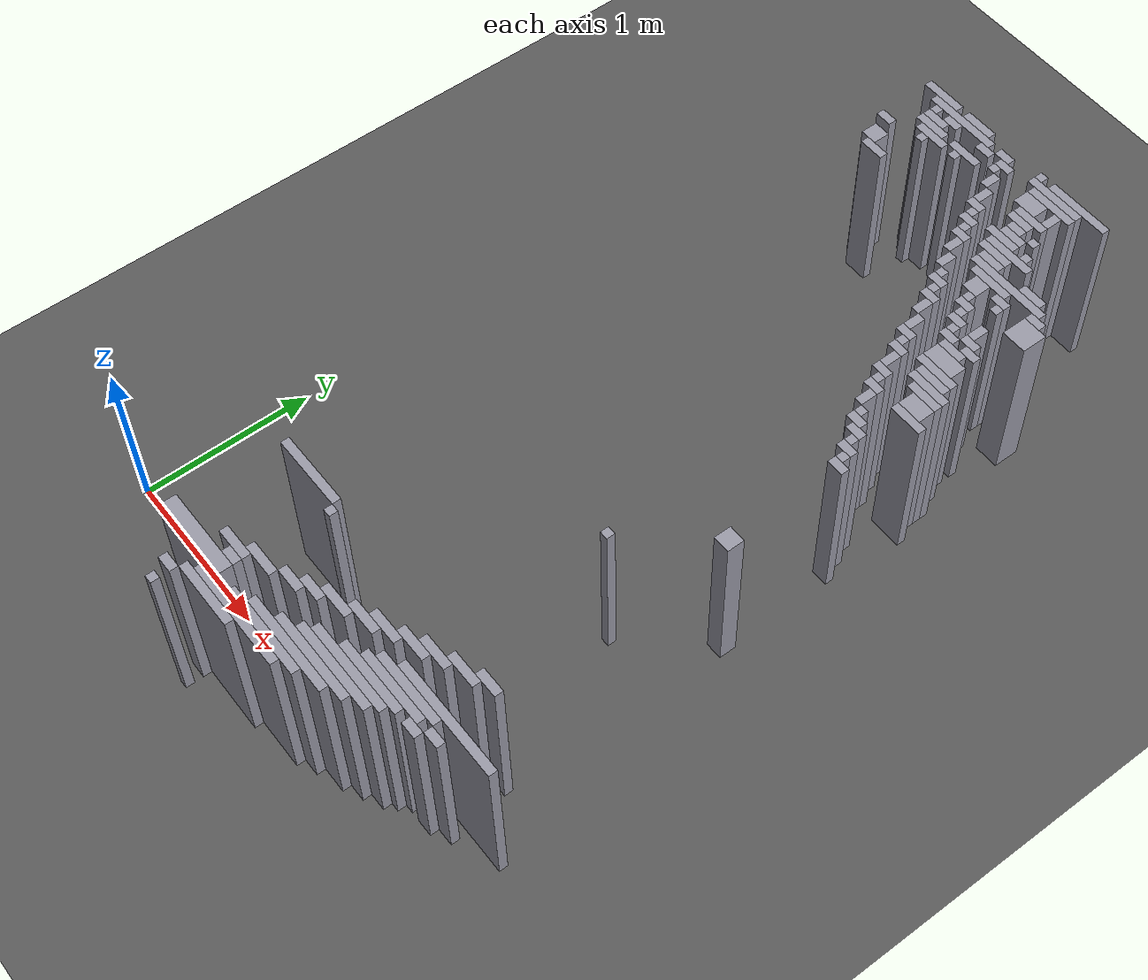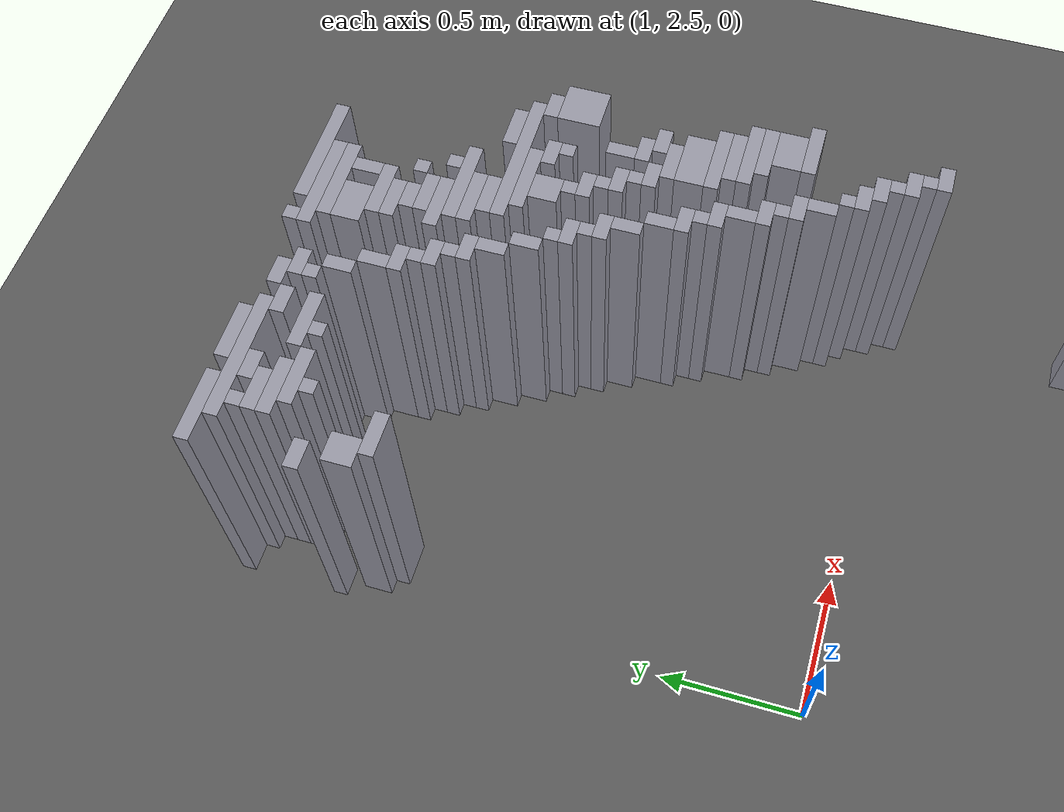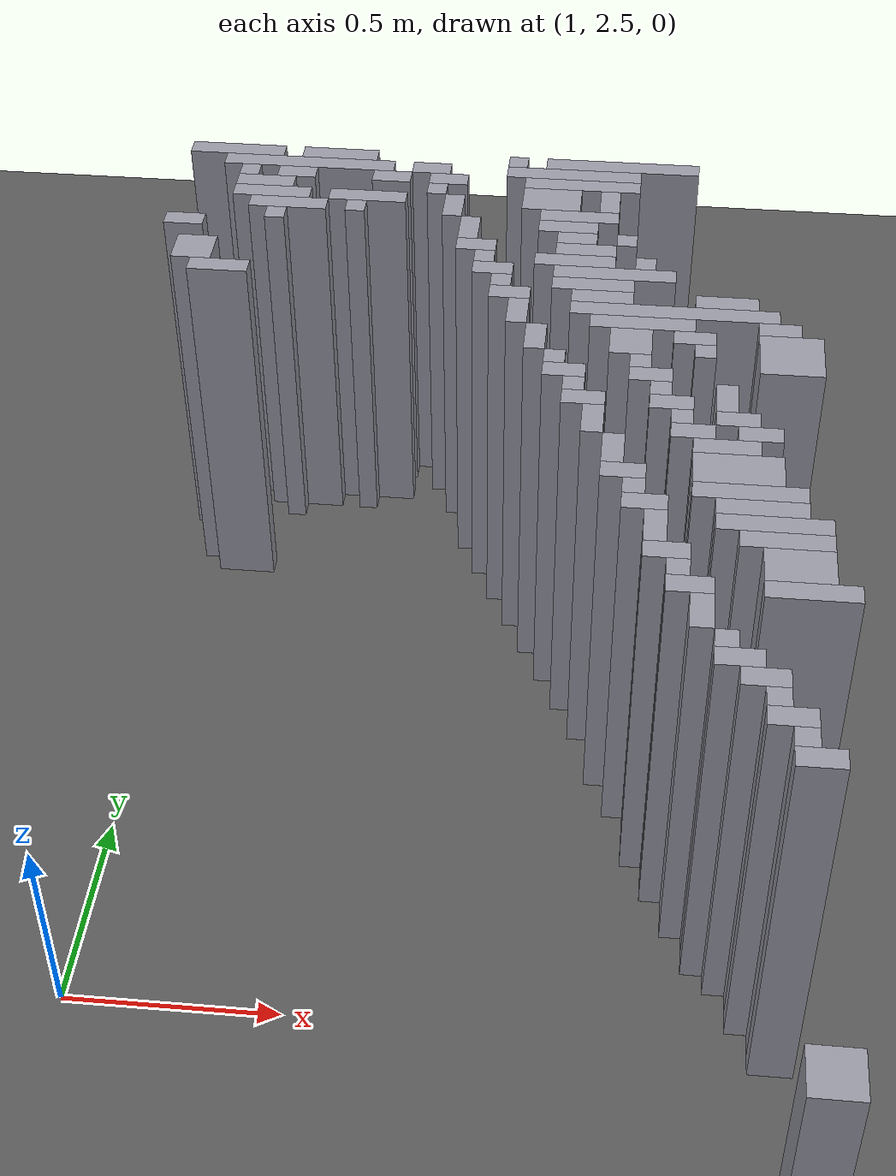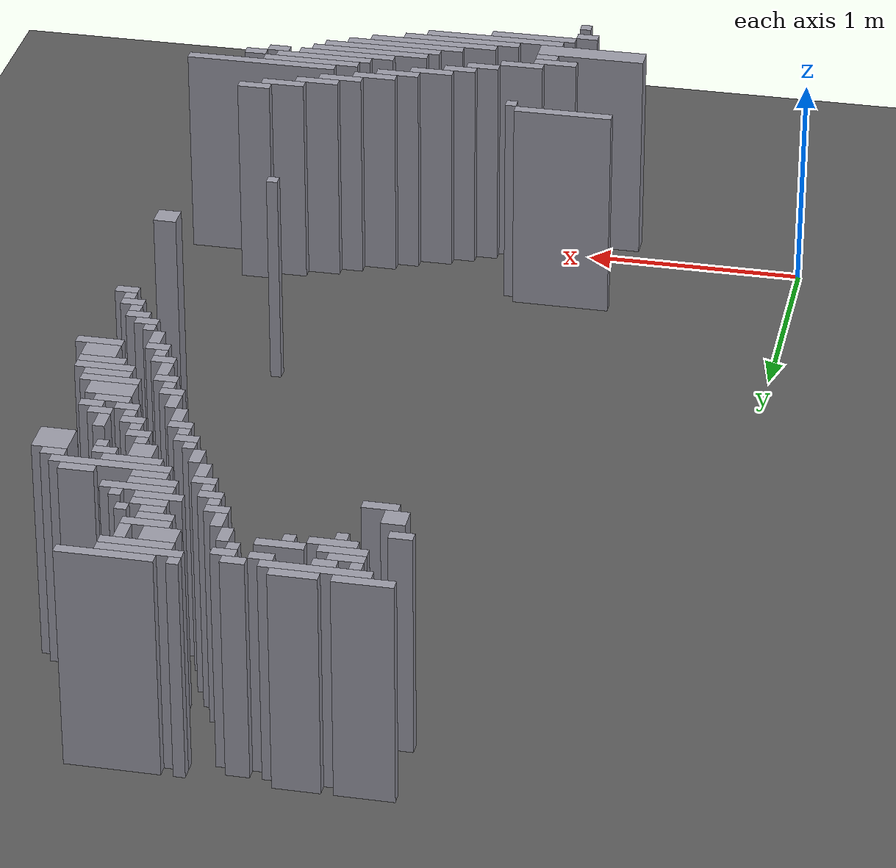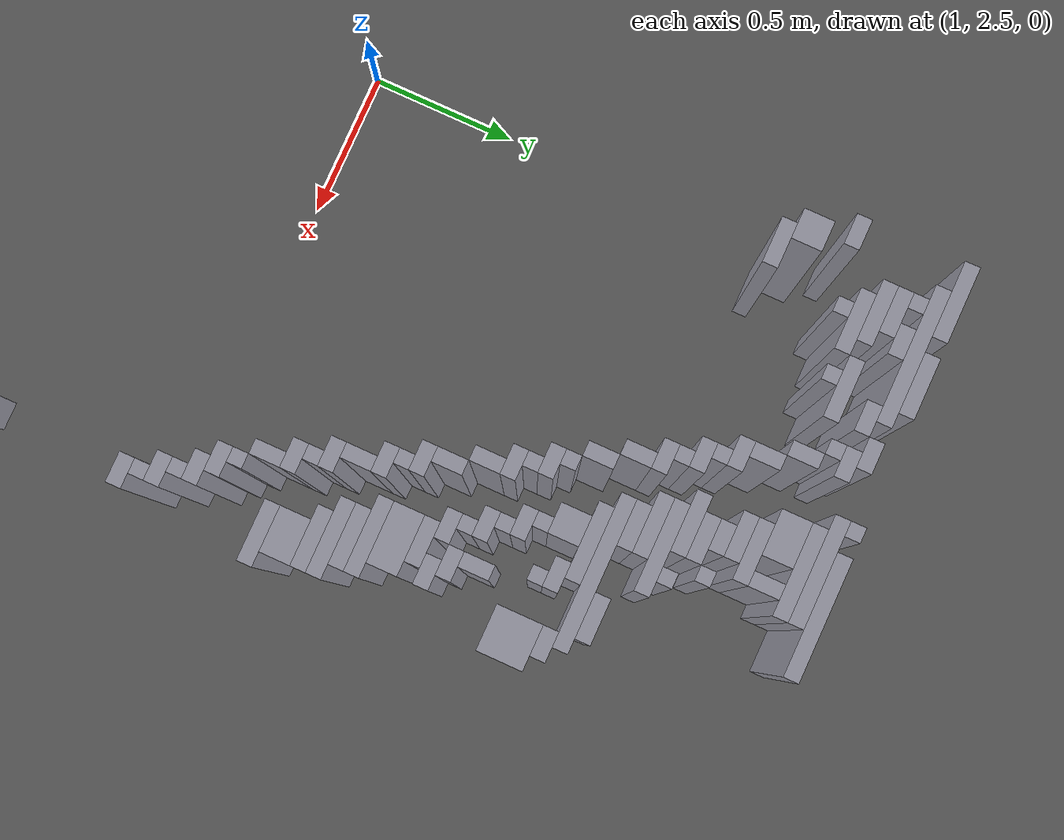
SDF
<sdf version="1.8">
 <world name="dimi">
  <model name="ground">
   <static>true</static>
   <link name="ground_link">
    <collision name="c"><geometry><plane><normal>0 0 1</normal><size>60 60</size></plane></geometry></collision>
    <visual name="v">
     <geometry><plane><normal>0 0 1</normal><size>60 60</size></plane></geometry>
     <material><ambient>0.3 0.3 0.3 1</ambient><diffuse>0.35 0.35 0.35 1</diffuse></material>
    </visual>
   </link>
  </model>
  <model name="walls">
   <static>true</static>
   <link name="wall_730">
    <pose>1.1080 4.5200 0.5000 0 0 0</pose>
    <collision name="c"><geometry><box><size>0.2500 0.0500 1.0000</size></box></geometry></collision>
    <visual name="v">
     <geometry><box><size>0.2500 0.0500 1.0000</size></box></geometry>
     <material><ambient>0.5 0.5 0.55 1</ambient><diffuse>0.6 0.6 0.65 1</diffuse></material>
    </visual>
   </link>
   <link name="wall_731">
    <pose>1.3830 4.5200 0.5000 0 0 0</pose>
    <collision name="c"><geometry><box><size>0.2000 0.0500 1.0000</size></box></geometry></collision>
    <visual name="v">
     <geometry><box><size>0.2000 0.0500 1.0000</size></box></geometry>
     <material><ambient>0.5 0.5 0.55 1</ambient><diffuse>0.6 0.6 0.65 1</diffuse></material>
    </visual>
   </link>
   <link name="wall_732">
    <pose>1.8580 4.5200 0.5000 0 0 0</pose>
    <collision name="c"><geometry><box><size>0.0500 0.0500 1.0000</size></box></geometry></collision>
    <visual name="v">
     <geometry><box><size>0.0500 0.0500 1.0000</size></box></geometry>
     <material><ambient>0.5 0.5 0.55 1</ambient><diffuse>0.6 0.6 0.65 1</diffuse></material>
    </visual>
   </link>
   <link name="wall_733">
    <pose>2.1330 4.5200 0.5000 0 0 0</pose>
    <collision name="c"><geometry><box><size>0.4000 0.0500 1.0000</size></box></geometry></collision>
    <visual name="v">
     <geometry><box><size>0.4000 0.0500 1.0000</size></box></geometry>
     <material><ambient>0.5 0.5 0.55 1</ambient><diffuse>0.6 0.6 0.65 1</diffuse></material>
    </visual>
   </link>
   <link name="wall_741">
    <pose>1.3080 4.4700 0.5000 0 0 0</pose>
    <collision name="c"><geometry><box><size>0.4500 0.0500 1.0000</size></box></geometry></collision>
    <visual name="v">
     <geometry><box><size>0.4500 0.0500 1.0000</size></box></geometry>
     <material><ambient>0.5 0.5 0.55 1</ambient><diffuse>0.6 0.6 0.65 1</diffuse></material>
    </visual>
   </link>
   <link name="wall_742">
    <pose>1.6330 4.4700 0.5000 0 0 0</pose>
    <collision name="c"><geometry><box><size>0.1000 0.0500 1.0000</size></box></geometry></collision>
    <visual name="v">
     <geometry><box><size>0.1000 0.0500 1.0000</size></box></geometry>
     <material><ambient>0.5 0.5 0.55 1</ambient><diffuse>0.6 0.6 0.65 1</diffuse></material>
    </visual>
   </link>
   <link name="wall_743">
    <pose>2.0080 4.4700 0.5000 0 0 0</pose>
    <collision name="c"><geometry><box><size>0.3500 0.0500 1.0000</size></box></geometry></collision>
    <visual name="v">
     <geometry><box><size>0.3500 0.0500 1.0000</size></box></geometry>
     <material><ambient>0.5 0.5 0.55 1</ambient><diffuse>0.6 0.6 0.65 1</diffuse></material>
    </visual>
   </link>
   <link name="wall_748">
    <pose>1.1580 4.4200 0.5000 0 0 0</pose>
    <collision name="c"><geometry><box><size>0.0500 0.0500 1.0000</size></box></geometry></collision>
    <visual name="v">
     <geometry><box><size>0.0500 0.0500 1.0000</size></box></geometry>
     <material><ambient>0.5 0.5 0.55 1</ambient><diffuse>0.6 0.6 0.65 1</diffuse></material>
    </visual>
   </link>
   <link name="wall_749">
    <pose>1.2830 4.4200 0.5000 0 0 0</pose>
    <collision name="c"><geometry><box><size>0.1000 0.0500 1.0000</size></box></geometry></collision>
    <visual name="v">
     <geometry><box><size>0.1000 0.0500 1.0000</size></box></geometry>
     <material><ambient>0.5 0.5 0.55 1</ambient><diffuse>0.6 0.6 0.65 1</diffuse></material>
    </visual>
   </link>
   <link name="wall_750">
    <pose>1.5330 4.4200 0.5000 0 0 0</pose>
    <collision name="c"><geometry><box><size>0.1000 0.0500 1.0000</size></box></geometry></collision>
    <visual name="v">
     <geometry><box><size>0.1000 0.0500 1.0000</size></box></geometry>
     <material><ambient>0.5 0.5 0.55 1</ambient><diffuse>0.6 0.6 0.65 1</diffuse></material>
    </visual>
   </link>
   <link name="wall_751">
    <pose>1.6830 4.4200 0.5000 0 0 0</pose>
    <collision name="c"><geometry><box><size>0.1000 0.0500 1.0000</size></box></geometry></collision>
    <visual name="v">
     <geometry><box><size>0.1000 0.0500 1.0000</size></box></geometry>
     <material><ambient>0.5 0.5 0.55 1</ambient><diffuse>0.6 0.6 0.65 1</diffuse></material>
    </visual>
   </link>
   <link name="wall_752">
    <pose>2.0330 4.4200 0.5000 0 0 0</pose>
    <collision name="c"><geometry><box><size>0.3000 0.0500 1.0000</size></box></geometry></collision>
    <visual name="v">
     <geometry><box><size>0.3000 0.0500 1.0000</size></box></geometry>
     <material><ambient>0.5 0.5 0.55 1</ambient><diffuse>0.6 0.6 0.65 1</diffuse></material>
    </visual>
   </link>
   <link name="wall_761">
    <pose>1.2080 4.3700 0.5000 0 0 0</pose>
    <collision name="c"><geometry><box><size>0.1500 0.0500 1.0000</size></box></geometry></collision>
    <visual name="v">
     <geometry><box><size>0.1500 0.0500 1.0000</size></box></geometry>
     <material><ambient>0.5 0.5 0.55 1</ambient><diffuse>0.6 0.6 0.65 1</diffuse></material>
    </visual>
   </link>
   <link name="wall_762">
    <pose>1.6580 4.3700 0.5000 0 0 0</pose>
    <collision name="c"><geometry><box><size>0.0500 0.0500 1.0000</size></box></geometry></collision>
    <visual name="v">
     <geometry><box><size>0.0500 0.0500 1.0000</size></box></geometry>
     <material><ambient>0.5 0.5 0.55 1</ambient><diffuse>0.6 0.6 0.65 1</diffuse></material>
    </visual>
   </link>
   <link name="wall_763">
    <pose>1.9580 4.3450 0.5000 0 0 0</pose>
    <collision name="c"><geometry><box><size>0.1500 0.1000 1.0000</size></box></geometry></collision>
    <visual name="v">
     <geometry><box><size>0.1500 0.1000 1.0000</size></box></geometry>
     <material><ambient>0.5 0.5 0.55 1</ambient><diffuse>0.6 0.6 0.65 1</diffuse></material>
    </visual>
   </link>
   <link name="wall_764">
    <pose>2.1080 4.3450 0.5000 0 0 0</pose>
    <collision name="c"><geometry><box><size>0.0500 0.1000 1.0000</size></box></geometry></collision>
    <visual name="v">
     <geometry><box><size>0.0500 0.1000 1.0000</size></box></geometry>
     <material><ambient>0.5 0.5 0.55 1</ambient><diffuse>0.6 0.6 0.65 1</diffuse></material>
    </visual>
   </link>
   <link name="wall_771">
    <pose>1.2330 4.3200 0.5000 0 0 0</pose>
    <collision name="c"><geometry><box><size>0.2000 0.0500 1.0000</size></box></geometry></collision>
    <visual name="v">
     <geometry><box><size>0.2000 0.0500 1.0000</size></box></geometry>
     <material><ambient>0.5 0.5 0.55 1</ambient><diffuse>0.6 0.6 0.65 1</diffuse></material>
    </visual>
   </link>
   <link name="wall_772">
    <pose>1.4830 4.3200 0.5000 0 0 0</pose>
    <collision name="c"><geometry><box><size>0.2000 0.0500 1.0000</size></box></geometry></collision>
    <visual name="v">
     <geometry><box><size>0.2000 0.0500 1.0000</size></box></geometry>
     <material><ambient>0.5 0.5 0.55 1</ambient><diffuse>0.6 0.6 0.65 1</diffuse></material>
    </visual>
   </link>
   <link name="wall_773">
    <pose>1.7080 4.2950 0.5000 0 0 0</pose>
    <collision name="c"><geometry><box><size>0.0500 0.1000 1.0000</size></box></geometry></collision>
    <visual name="v">
     <geometry><box><size>0.0500 0.1000 1.0000</size></box></geometry>
     <material><ambient>0.5 0.5 0.55 1</ambient><diffuse>0.6 0.6 0.65 1</diffuse></material>
    </visual>
   </link>
   <link name="wall_781">
    <pose>1.2830 4.2700 0.5000 0 0 0</pose>
    <collision name="c"><geometry><box><size>0.2000 0.0500 1.0000</size></box></geometry></collision>
    <visual name="v">
     <geometry><box><size>0.2000 0.0500 1.0000</size></box></geometry>
     <material><ambient>0.5 0.5 0.55 1</ambient><diffuse>0.6 0.6 0.65 1</diffuse></material>
    </visual>
   </link>
   <link name="wall_782">
    <pose>1.4580 4.2700 0.5000 0 0 0</pose>
    <collision name="c"><geometry><box><size>0.0500 0.0500 1.0000</size></box></geometry></collision>
    <visual name="v">
     <geometry><box><size>0.0500 0.0500 1.0000</size></box></geometry>
     <material><ambient>0.5 0.5 0.55 1</ambient><diffuse>0.6 0.6 0.65 1</diffuse></material>
    </visual>
   </link>
   <link name="wall_783">
    <pose>2.0330 4.2700 0.5000 0 0 0</pose>
    <collision name="c"><geometry><box><size>0.2000 0.0500 1.0000</size></box></geometry></collision>
    <visual name="v">
     <geometry><box><size>0.2000 0.0500 1.0000</size></box></geometry>
     <material><ambient>0.5 0.5 0.55 1</ambient><diffuse>0.6 0.6 0.65 1</diffuse></material>
    </visual>
   </link>
   <link name="wall_792">
    <pose>1.2580 4.2200 0.5000 0 0 0</pose>
    <collision name="c"><geometry><box><size>0.0500 0.0500 1.0000</size></box></geometry></collision>
    <visual name="v">
     <geometry><box><size>0.0500 0.0500 1.0000</size></box></geometry>
     <material><ambient>0.5 0.5 0.55 1</ambient><diffuse>0.6 0.6 0.65 1</diffuse></material>
    </visual>
   </link>
   <link name="wall_793">
    <pose>1.7580 4.1950 0.5000 0 0 0</pose>
    <collision name="c"><geometry><box><size>0.0500 0.1000 1.0000</size></box></geometry></collision>
    <visual name="v">
     <geometry><box><size>0.0500 0.1000 1.0000</size></box></geometry>
     <material><ambient>0.5 0.5 0.55 1</ambient><diffuse>0.6 0.6 0.65 1</diffuse></material>
    </visual>
   </link>
   <link name="wall_794">
    <pose>2.0080 4.2200 0.5000 0 0 0</pose>
    <collision name="c"><geometry><box><size>0.1500 0.0500 1.0000</size></box></geometry></collision>
    <visual name="v">
     <geometry><box><size>0.1500 0.0500 1.0000</size></box></geometry>
     <material><ambient>0.5 0.5 0.55 1</ambient><diffuse>0.6 0.6 0.65 1</diffuse></material>
    </visual>
   </link>
   <link name="wall_798">
    <pose>1.0330 4.1700 0.5000 0 0 0</pose>
    <collision name="c"><geometry><box><size>0.1000 0.0500 1.0000</size></box></geometry></collision>
    <visual name="v">
     <geometry><box><size>0.1000 0.0500 1.0000</size></box></geometry>
     <material><ambient>0.5 0.5 0.55 1</ambient><diffuse>0.6 0.6 0.65 1</diffuse></material>
    </visual>
   </link>
   <link name="wall_799">
    <pose>2.0330 4.1700 0.5000 0 0 0</pose>
    <collision name="c"><geometry><box><size>0.1000 0.0500 1.0000</size></box></geometry></collision>
    <visual name="v">
     <geometry><box><size>0.1000 0.0500 1.0000</size></box></geometry>
     <material><ambient>0.5 0.5 0.55 1</ambient><diffuse>0.6 0.6 0.65 1</diffuse></material>
    </visual>
   </link>
   <link name="wall_800">
    <pose>2.1580 4.1700 0.5000 0 0 0</pose>
    <collision name="c"><geometry><box><size>0.0500 0.0500 1.0000</size></box></geometry></collision>
    <visual name="v">
     <geometry><box><size>0.0500 0.0500 1.0000</size></box></geometry>
     <material><ambient>0.5 0.5 0.55 1</ambient><diffuse>0.6 0.6 0.65 1</diffuse></material>
    </visual>
   </link>
   <link name="wall_810">
    <pose>1.7830 4.1200 0.5000 0 0 0</pose>
    <collision name="c"><geometry><box><size>0.1000 0.0500 1.0000</size></box></geometry></collision>
    <visual name="v">
     <geometry><box><size>0.1000 0.0500 1.0000</size></box></geometry>
     <material><ambient>0.5 0.5 0.55 1</ambient><diffuse>0.6 0.6 0.65 1</diffuse></material>
    </visual>
   </link>
   <link name="wall_811">
    <pose>2.0580 4.1200 0.5000 0 0 0</pose>
    <collision name="c"><geometry><box><size>0.1500 0.0500 1.0000</size></box></geometry></collision>
    <visual name="v">
     <geometry><box><size>0.1500 0.0500 1.0000</size></box></geometry>
     <material><ambient>0.5 0.5 0.55 1</ambient><diffuse>0.6 0.6 0.65 1</diffuse></material>
    </visual>
   </link>
   <link name="wall_820">
    <pose>1.0830 4.0450 0.5000 0 0 0</pose>
    <collision name="c"><geometry><box><size>0.1000 0.1000 1.0000</size></box></geometry></collision>
    <visual name="v">
     <geometry><box><size>0.1000 0.1000 1.0000</size></box></geometry>
     <material><ambient>0.5 0.5 0.55 1</ambient><diffuse>0.6 0.6 0.65 1</diffuse></material>
    </visual>
   </link>
   <link name="wall_821">
    <pose>1.8080 4.0700 0.5000 0 0 0</pose>
    <collision name="c"><geometry><box><size>0.0500 0.0500 1.0000</size></box></geometry></collision>
    <visual name="v">
     <geometry><box><size>0.0500 0.0500 1.0000</size></box></geometry>
     <material><ambient>0.5 0.5 0.55 1</ambient><diffuse>0.6 0.6 0.65 1</diffuse></material>
    </visual>
   </link>
   <link name="wall_822">
    <pose>2.0330 4.0700 0.5000 0 0 0</pose>
    <collision name="c"><geometry><box><size>0.2000 0.0500 1.0000</size></box></geometry></collision>
    <visual name="v">
     <geometry><box><size>0.2000 0.0500 1.0000</size></box></geometry>
     <material><ambient>0.5 0.5 0.55 1</ambient><diffuse>0.6 0.6 0.65 1</diffuse></material>
    </visual>
   </link>
   <link name="wall_823">
    <pose>2.2080 4.0700 0.5000 0 0 0</pose>
    <collision name="c"><geometry><box><size>0.0500 0.0500 1.0000</size></box></geometry></collision>
    <visual name="v">
     <geometry><box><size>0.0500 0.0500 1.0000</size></box></geometry>
     <material><ambient>0.5 0.5 0.55 1</ambient><diffuse>0.6 0.6 0.65 1</diffuse></material>
    </visual>
   </link>
   <link name="wall_831">
    <pose>1.8330 4.0200 0.5000 0 0 0</pose>
    <collision name="c"><geometry><box><size>0.1000 0.0500 1.0000</size></box></geometry></collision>
    <visual name="v">
     <geometry><box><size>0.1000 0.0500 1.0000</size></box></geometry>
     <material><ambient>0.5 0.5 0.55 1</ambient><diffuse>0.6 0.6 0.65 1</diffuse></material>
    </visual>
   </link>
   <link name="wall_832">
    <pose>2.1330 4.0200 0.5000 0 0 0</pose>
    <collision name="c"><geometry><box><size>0.3000 0.0500 1.0000</size></box></geometry></collision>
    <visual name="v">
     <geometry><box><size>0.3000 0.0500 1.0000</size></box></geometry>
     <material><ambient>0.5 0.5 0.55 1</ambient><diffuse>0.6 0.6 0.65 1</diffuse></material>
    </visual>
   </link>
   <link name="wall_843">
    <pose>1.1580 3.9700 0.5000 0 0 0</pose>
    <collision name="c"><geometry><box><size>0.1500 0.0500 1.0000</size></box></geometry></collision>
    <visual name="v">
     <geometry><box><size>0.1500 0.0500 1.0000</size></box></geometry>
     <material><ambient>0.5 0.5 0.55 1</ambient><diffuse>0.6 0.6 0.65 1</diffuse></material>
    </visual>
   </link>
   <link name="wall_844">
    <pose>1.8580 3.9700 0.5000 0 0 0</pose>
    <collision name="c"><geometry><box><size>0.0500 0.0500 1.0000</size></box></geometry></collision>
    <visual name="v">
     <geometry><box><size>0.0500 0.0500 1.0000</size></box></geometry>
     <material><ambient>0.5 0.5 0.55 1</ambient><diffuse>0.6 0.6 0.65 1</diffuse></material>
    </visual>
   </link>
   <link name="wall_845">
    <pose>2.0830 3.9700 0.5000 0 0 0</pose>
    <collision name="c"><geometry><box><size>0.2000 0.0500 1.0000</size></box></geometry></collision>
    <visual name="v">
     <geometry><box><size>0.2000 0.0500 1.0000</size></box></geometry>
     <material><ambient>0.5 0.5 0.55 1</ambient><diffuse>0.6 0.6 0.65 1</diffuse></material>
    </visual>
   </link>
   <link name="wall_855">
    <pose>1.8830 3.9200 0.5000 0 0 0</pose>
    <collision name="c"><geometry><box><size>0.1000 0.0500 1.0000</size></box></geometry></collision>
    <visual name="v">
     <geometry><box><size>0.1000 0.0500 1.0000</size></box></geometry>
     <material><ambient>0.5 0.5 0.55 1</ambient><diffuse>0.6 0.6 0.65 1</diffuse></material>
    </visual>
   </link>
   <link name="wall_856">
    <pose>2.1080 3.9200 0.5000 0 0 0</pose>
    <collision name="c"><geometry><box><size>0.1500 0.0500 1.0000</size></box></geometry></collision>
    <visual name="v">
     <geometry><box><size>0.1500 0.0500 1.0000</size></box></geometry>
     <material><ambient>0.5 0.5 0.55 1</ambient><diffuse>0.6 0.6 0.65 1</diffuse></material>
    </visual>
   </link>
   <link name="wall_857">
    <pose>2.4080 3.9200 0.5000 0 0 0</pose>
    <collision name="c"><geometry><box><size>0.1500 0.0500 1.0000</size></box></geometry></collision>
    <visual name="v">
     <geometry><box><size>0.1500 0.0500 1.0000</size></box></geometry>
     <material><ambient>0.5 0.5 0.55 1</ambient><diffuse>0.6 0.6 0.65 1</diffuse></material>
    </visual>
   </link>
   <link name="wall_864">
    <pose>1.9080 3.8450 0.5000 0 0 0</pose>
    <collision name="c"><geometry><box><size>0.0500 0.1000 1.0000</size></box></geometry></collision>
    <visual name="v">
     <geometry><box><size>0.0500 0.1000 1.0000</size></box></geometry>
     <material><ambient>0.5 0.5 0.55 1</ambient><diffuse>0.6 0.6 0.65 1</diffuse></material>
    </visual>
   </link>
   <link name="wall_865">
    <pose>2.2830 3.8700 0.5000 0 0 0</pose>
    <collision name="c"><geometry><box><size>0.5000 0.0500 1.0000</size></box></geometry></collision>
    <visual name="v">
     <geometry><box><size>0.5000 0.0500 1.0000</size></box></geometry>
     <material><ambient>0.5 0.5 0.55 1</ambient><diffuse>0.6 0.6 0.65 1</diffuse></material>
    </visual>
   </link>
   <link name="wall_872">
    <pose>2.2080 3.8200 0.5000 0 0 0</pose>
    <collision name="c"><geometry><box><size>0.2500 0.0500 1.0000</size></box></geometry></collision>
    <visual name="v">
     <geometry><box><size>0.2500 0.0500 1.0000</size></box></geometry>
     <material><ambient>0.5 0.5 0.55 1</ambient><diffuse>0.6 0.6 0.65 1</diffuse></material>
    </visual>
   </link>
   <link name="wall_873">
    <pose>2.5330 3.8200 0.5000 0 0 0</pose>
    <collision name="c"><geometry><box><size>0.1000 0.0500 1.0000</size></box></geometry></collision>
    <visual name="v">
     <geometry><box><size>0.1000 0.0500 1.0000</size></box></geometry>
     <material><ambient>0.5 0.5 0.55 1</ambient><diffuse>0.6 0.6 0.65 1</diffuse></material>
    </visual>
   </link>
   <link name="wall_880">
    <pose>1.9580 3.7450 0.5000 0 0 0</pose>
    <collision name="c"><geometry><box><size>0.0500 0.1000 1.0000</size></box></geometry></collision>
    <visual name="v">
     <geometry><box><size>0.0500 0.1000 1.0000</size></box></geometry>
     <material><ambient>0.5 0.5 0.55 1</ambient><diffuse>0.6 0.6 0.65 1</diffuse></material>
    </visual>
   </link>
   <link name="wall_881">
    <pose>2.1830 3.7450 0.5000 0 0 0</pose>
    <collision name="c"><geometry><box><size>0.1000 0.1000 1.0000</size></box></geometry></collision>
    <visual name="v">
     <geometry><box><size>0.1000 0.1000 1.0000</size></box></geometry>
     <material><ambient>0.5 0.5 0.55 1</ambient><diffuse>0.6 0.6 0.65 1</diffuse></material>
    </visual>
   </link>
   <link name="wall_882">
    <pose>2.3330 3.7700 0.5000 0 0 0</pose>
    <collision name="c"><geometry><box><size>0.1000 0.0500 1.0000</size></box></geometry></collision>
    <visual name="v">
     <geometry><box><size>0.1000 0.0500 1.0000</size></box></geometry>
     <material><ambient>0.5 0.5 0.55 1</ambient><diffuse>0.6 0.6 0.65 1</diffuse></material>
    </visual>
   </link>
   <link name="wall_883">
    <pose>2.5580 3.7200 0.5000 0 0 0</pose>
    <collision name="c"><geometry><box><size>0.1500 0.1500 1.0000</size></box></geometry></collision>
    <visual name="v">
     <geometry><box><size>0.1500 0.1500 1.0000</size></box></geometry>
     <material><ambient>0.5 0.5 0.55 1</ambient><diffuse>0.6 0.6 0.65 1</diffuse></material>
    </visual>
   </link>
   <link name="wall_888">
    <pose>2.3580 3.7200 0.5000 0 0 0</pose>
    <collision name="c"><geometry><box><size>0.0500 0.0500 1.0000</size></box></geometry></collision>
    <visual name="v">
     <geometry><box><size>0.0500 0.0500 1.0000</size></box></geometry>
     <material><ambient>0.5 0.5 0.55 1</ambient><diffuse>0.6 0.6 0.65 1</diffuse></material>
    </visual>
   </link>
   <link name="wall_898">
    <pose>2.0080 3.6700 0.5000 0 0 0</pose>
    <collision name="c"><geometry><box><size>0.0500 0.0500 1.0000</size></box></geometry></collision>
    <visual name="v">
     <geometry><box><size>0.0500 0.0500 1.0000</size></box></geometry>
     <material><ambient>0.5 0.5 0.55 1</ambient><diffuse>0.6 0.6 0.65 1</diffuse></material>
    </visual>
   </link>
   <link name="wall_899">
    <pose>2.2080 3.6700 0.5000 0 0 0</pose>
    <collision name="c"><geometry><box><size>0.0500 0.0500 1.0000</size></box></geometry></collision>
    <visual name="v">
     <geometry><box><size>0.0500 0.0500 1.0000</size></box></geometry>
     <material><ambient>0.5 0.5 0.55 1</ambient><diffuse>0.6 0.6 0.65 1</diffuse></material>
    </visual>
   </link>
   <link name="wall_905">
    <pose>2.0330 3.6200 0.5000 0 0 0</pose>
    <collision name="c"><geometry><box><size>0.1000 0.0500 1.0000</size></box></geometry></collision>
    <visual name="v">
     <geometry><box><size>0.1000 0.0500 1.0000</size></box></geometry>
     <material><ambient>0.5 0.5 0.55 1</ambient><diffuse>0.6 0.6 0.65 1</diffuse></material>
    </visual>
   </link>
   <link name="wall_906">
    <pose>2.2330 3.6200 0.5000 0 0 0</pose>
    <collision name="c"><geometry><box><size>0.1000 0.0500 1.0000</size></box></geometry></collision>
    <visual name="v">
     <geometry><box><size>0.1000 0.0500 1.0000</size></box></geometry>
     <material><ambient>0.5 0.5 0.55 1</ambient><diffuse>0.6 0.6 0.65 1</diffuse></material>
    </visual>
   </link>
   <link name="wall_913">
    <pose>2.0580 3.5700 0.5000 0 0 0</pose>
    <collision name="c"><geometry><box><size>0.0500 0.0500 1.0000</size></box></geometry></collision>
    <visual name="v">
     <geometry><box><size>0.0500 0.0500 1.0000</size></box></geometry>
     <material><ambient>0.5 0.5 0.55 1</ambient><diffuse>0.6 0.6 0.65 1</diffuse></material>
    </visual>
   </link>
   <link name="wall_914">
    <pose>2.2580 3.5700 0.5000 0 0 0</pose>
    <collision name="c"><geometry><box><size>0.0500 0.0500 1.0000</size></box></geometry></collision>
    <visual name="v">
     <geometry><box><size>0.0500 0.0500 1.0000</size></box></geometry>
     <material><ambient>0.5 0.5 0.55 1</ambient><diffuse>0.6 0.6 0.65 1</diffuse></material>
    </visual>
   </link>
   <link name="wall_915">
    <pose>2.4080 3.5450 0.5000 0 0 0</pose>
    <collision name="c"><geometry><box><size>0.0500 0.1000 1.0000</size></box></geometry></collision>
    <visual name="v">
     <geometry><box><size>0.0500 0.1000 1.0000</size></box></geometry>
     <material><ambient>0.5 0.5 0.55 1</ambient><diffuse>0.6 0.6 0.65 1</diffuse></material>
    </visual>
   </link>
   <link name="wall_922">
    <pose>2.0830 3.5200 0.5000 0 0 0</pose>
    <collision name="c"><geometry><box><size>0.1000 0.0500 1.0000</size></box></geometry></collision>
    <visual name="v">
     <geometry><box><size>0.1000 0.0500 1.0000</size></box></geometry>
     <material><ambient>0.5 0.5 0.55 1</ambient><diffuse>0.6 0.6 0.65 1</diffuse></material>
    </visual>
   </link>
   <link name="wall_923">
    <pose>2.2830 3.5200 0.5000 0 0 0</pose>
    <collision name="c"><geometry><box><size>0.1000 0.0500 1.0000</size></box></geometry></collision>
    <visual name="v">
     <geometry><box><size>0.1000 0.0500 1.0000</size></box></geometry>
     <material><ambient>0.5 0.5 0.55 1</ambient><diffuse>0.6 0.6 0.65 1</diffuse></material>
    </visual>
   </link>
   <link name="wall_929">
    <pose>2.1080 3.4450 0.5000 0 0 0</pose>
    <collision name="c"><geometry><box><size>0.0500 0.1000 1.0000</size></box></geometry></collision>
    <visual name="v">
     <geometry><box><size>0.0500 0.1000 1.0000</size></box></geometry>
     <material><ambient>0.5 0.5 0.55 1</ambient><diffuse>0.6 0.6 0.65 1</diffuse></material>
    </visual>
   </link>
   <link name="wall_930">
    <pose>2.3080 3.4700 0.5000 0 0 0</pose>
    <collision name="c"><geometry><box><size>0.0500 0.0500 1.0000</size></box></geometry></collision>
    <visual name="v">
     <geometry><box><size>0.0500 0.0500 1.0000</size></box></geometry>
     <material><ambient>0.5 0.5 0.55 1</ambient><diffuse>0.6 0.6 0.65 1</diffuse></material>
    </visual>
   </link>
   <link name="wall_931">
    <pose>2.4330 3.4700 0.5000 0 0 0</pose>
    <collision name="c"><geometry><box><size>0.1000 0.0500 1.0000</size></box></geometry></collision>
    <visual name="v">
     <geometry><box><size>0.1000 0.0500 1.0000</size></box></geometry>
     <material><ambient>0.5 0.5 0.55 1</ambient><diffuse>0.6 0.6 0.65 1</diffuse></material>
    </visual>
   </link>
   <link name="wall_938">
    <pose>2.3330 3.4200 0.5000 0 0 0</pose>
    <collision name="c"><geometry><box><size>0.1000 0.0500 1.0000</size></box></geometry></collision>
    <visual name="v">
     <geometry><box><size>0.1000 0.0500 1.0000</size></box></geometry>
     <material><ambient>0.5 0.5 0.55 1</ambient><diffuse>0.6 0.6 0.65 1</diffuse></material>
    </visual>
   </link>
   <link name="wall_939">
    <pose>2.4830 3.4200 0.5000 0 0 0</pose>
    <collision name="c"><geometry><box><size>0.1000 0.0500 1.0000</size></box></geometry></collision>
    <visual name="v">
     <geometry><box><size>0.1000 0.0500 1.0000</size></box></geometry>
     <material><ambient>0.5 0.5 0.55 1</ambient><diffuse>0.6 0.6 0.65 1</diffuse></material>
    </visual>
   </link>
   <link name="wall_948">
    <pose>2.1580 3.3450 0.5000 0 0 0</pose>
    <collision name="c"><geometry><box><size>0.0500 0.1000 1.0000</size></box></geometry></collision>
    <visual name="v">
     <geometry><box><size>0.0500 0.1000 1.0000</size></box></geometry>
     <material><ambient>0.5 0.5 0.55 1</ambient><diffuse>0.6 0.6 0.65 1</diffuse></material>
    </visual>
   </link>
   <link name="wall_949">
    <pose>2.4080 3.3700 0.5000 0 0 0</pose>
    <collision name="c"><geometry><box><size>0.1500 0.0500 1.0000</size></box></geometry></collision>
    <visual name="v">
     <geometry><box><size>0.1500 0.0500 1.0000</size></box></geometry>
     <material><ambient>0.5 0.5 0.55 1</ambient><diffuse>0.6 0.6 0.65 1</diffuse></material>
    </visual>
   </link>
   <link name="wall_957">
    <pose>2.4330 3.2950 0.5000 0 0 0</pose>
    <collision name="c"><geometry><box><size>0.2000 0.1000 1.0000</size></box></geometry></collision>
    <visual name="v">
     <geometry><box><size>0.2000 0.1000 1.0000</size></box></geometry>
     <material><ambient>0.5 0.5 0.55 1</ambient><diffuse>0.6 0.6 0.65 1</diffuse></material>
    </visual>
   </link>
   <link name="wall_965">
    <pose>2.1830 3.2700 0.5000 0 0 0</pose>
    <collision name="c"><geometry><box><size>0.1000 0.0500 1.0000</size></box></geometry></collision>
    <visual name="v">
     <geometry><box><size>0.1000 0.0500 1.0000</size></box></geometry>
     <material><ambient>0.5 0.5 0.55 1</ambient><diffuse>0.6 0.6 0.65 1</diffuse></material>
    </visual>
   </link>
   <link name="wall_972">
    <pose>2.2080 3.2200 0.5000 0 0 0</pose>
    <collision name="c"><geometry><box><size>0.0500 0.0500 1.0000</size></box></geometry></collision>
    <visual name="v">
     <geometry><box><size>0.0500 0.0500 1.0000</size></box></geometry>
     <material><ambient>0.5 0.5 0.55 1</ambient><diffuse>0.6 0.6 0.65 1</diffuse></material>
    </visual>
   </link>
   <link name="wall_973">
    <pose>2.4580 3.2200 0.5000 0 0 0</pose>
    <collision name="c"><geometry><box><size>0.2500 0.0500 1.0000</size></box></geometry></collision>
    <visual name="v">
     <geometry><box><size>0.2500 0.0500 1.0000</size></box></geometry>
     <material><ambient>0.5 0.5 0.55 1</ambient><diffuse>0.6 0.6 0.65 1</diffuse></material>
    </visual>
   </link>
   <link name="wall_979">
    <pose>2.2330 3.1700 0.5000 0 0 0</pose>
    <collision name="c"><geometry><box><size>0.1000 0.0500 1.0000</size></box></geometry></collision>
    <visual name="v">
     <geometry><box><size>0.1000 0.0500 1.0000</size></box></geometry>
     <material><ambient>0.5 0.5 0.55 1</ambient><diffuse>0.6 0.6 0.65 1</diffuse></material>
    </visual>
   </link>
   <link name="wall_980">
    <pose>2.4830 3.1700 0.5000 0 0 0</pose>
    <collision name="c"><geometry><box><size>0.2000 0.0500 1.0000</size></box></geometry></collision>
    <visual name="v">
     <geometry><box><size>0.2000 0.0500 1.0000</size></box></geometry>
     <material><ambient>0.5 0.5 0.55 1</ambient><diffuse>0.6 0.6 0.65 1</diffuse></material>
    </visual>
   </link>
   <link name="wall_986">
    <pose>2.2580 3.0950 0.5000 0 0 0</pose>
    <collision name="c"><geometry><box><size>0.0500 0.1000 1.0000</size></box></geometry></collision>
    <visual name="v">
     <geometry><box><size>0.0500 0.1000 1.0000</size></box></geometry>
     <material><ambient>0.5 0.5 0.55 1</ambient><diffuse>0.6 0.6 0.65 1</diffuse></material>
    </visual>
   </link>
   <link name="wall_987">
    <pose>2.5080 3.1200 0.5000 0 0 0</pose>
    <collision name="c"><geometry><box><size>0.2500 0.0500 1.0000</size></box></geometry></collision>
    <visual name="v">
     <geometry><box><size>0.2500 0.0500 1.0000</size></box></geometry>
     <material><ambient>0.5 0.5 0.55 1</ambient><diffuse>0.6 0.6 0.65 1</diffuse></material>
    </visual>
   </link>
   <link name="wall_991">
    <pose>2.5330 3.0700 0.5000 0 0 0</pose>
    <collision name="c"><geometry><box><size>0.2000 0.0500 1.0000</size></box></geometry></collision>
    <visual name="v">
     <geometry><box><size>0.2000 0.0500 1.0000</size></box></geometry>
     <material><ambient>0.5 0.5 0.55 1</ambient><diffuse>0.6 0.6 0.65 1</diffuse></material>
    </visual>
   </link>
   <link name="wall_994">
    <pose>2.2830 3.0200 0.5000 0 0 0</pose>
    <collision name="c"><geometry><box><size>0.1000 0.0500 1.0000</size></box></geometry></collision>
    <visual name="v">
     <geometry><box><size>0.1000 0.0500 1.0000</size></box></geometry>
     <material><ambient>0.5 0.5 0.55 1</ambient><diffuse>0.6 0.6 0.65 1</diffuse></material>
    </visual>
   </link>
   <link name="wall_995">
    <pose>2.5580 2.9950 0.5000 0 0 0</pose>
    <collision name="c"><geometry><box><size>0.1500 0.1000 1.0000</size></box></geometry></collision>
    <visual name="v">
     <geometry><box><size>0.1500 0.1000 1.0000</size></box></geometry>
     <material><ambient>0.5 0.5 0.55 1</ambient><diffuse>0.6 0.6 0.65 1</diffuse></material>
    </visual>
   </link>
   <link name="wall_998">
    <pose>2.3080 2.9700 0.5000 0 0 0</pose>
    <collision name="c"><geometry><box><size>0.0500 0.0500 1.0000</size></box></geometry></collision>
    <visual name="v">
     <geometry><box><size>0.0500 0.0500 1.0000</size></box></geometry>
     <material><ambient>0.5 0.5 0.55 1</ambient><diffuse>0.6 0.6 0.65 1</diffuse></material>
    </visual>
   </link>
   <link name="wall_1003">
    <pose>2.3330 2.9200 0.5000 0 0 0</pose>
    <collision name="c"><geometry><box><size>0.1000 0.0500 1.0000</size></box></geometry></collision>
    <visual name="v">
     <geometry><box><size>0.1000 0.0500 1.0000</size></box></geometry>
     <material><ambient>0.5 0.5 0.55 1</ambient><diffuse>0.6 0.6 0.65 1</diffuse></material>
    </visual>
   </link>
   <link name="wall_1004">
    <pose>2.5830 2.9200 0.5000 0 0 0</pose>
    <collision name="c"><geometry><box><size>0.2000 0.0500 1.0000</size></box></geometry></collision>
    <visual name="v">
     <geometry><box><size>0.2000 0.0500 1.0000</size></box></geometry>
     <material><ambient>0.5 0.5 0.55 1</ambient><diffuse>0.6 0.6 0.65 1</diffuse></material>
    </visual>
   </link>
   <link name="wall_1007">
    <pose>2.3580 2.8450 0.5000 0 0 0</pose>
    <collision name="c"><geometry><box><size>0.0500 0.1000 1.0000</size></box></geometry></collision>
    <visual name="v">
     <geometry><box><size>0.0500 0.1000 1.0000</size></box></geometry>
     <material><ambient>0.5 0.5 0.55 1</ambient><diffuse>0.6 0.6 0.65 1</diffuse></material>
    </visual>
   </link>
   <link name="wall_1014">
    <pose>2.4080 2.7700 0.5000 0 0 0</pose>
    <collision name="c"><geometry><box><size>0.0500 0.0500 1.0000</size></box></geometry></collision>
    <visual name="v">
     <geometry><box><size>0.0500 0.0500 1.0000</size></box></geometry>
     <material><ambient>0.5 0.5 0.55 1</ambient><diffuse>0.6 0.6 0.65 1</diffuse></material>
    </visual>
   </link>
   <link name="wall_1020">
    <pose>2.4330 2.7200 0.5000 0 0 0</pose>
    <collision name="c"><geometry><box><size>0.1000 0.0500 1.0000</size></box></geometry></collision>
    <visual name="v">
     <geometry><box><size>0.1000 0.0500 1.0000</size></box></geometry>
     <material><ambient>0.5 0.5 0.55 1</ambient><diffuse>0.6 0.6 0.65 1</diffuse></material>
    </visual>
   </link>
   <link name="wall_1026">
    <pose>2.4830 2.6700 0.5000 0 0 0</pose>
    <collision name="c"><geometry><box><size>0.1000 0.0500 1.0000</size></box></geometry></collision>
    <visual name="v">
     <geometry><box><size>0.1000 0.0500 1.0000</size></box></geometry>
     <material><ambient>0.5 0.5 0.55 1</ambient><diffuse>0.6 0.6 0.65 1</diffuse></material>
    </visual>
   </link>
   <link name="wall_1031">
    <pose>2.5080 2.6200 0.5000 0 0 0</pose>
    <collision name="c"><geometry><box><size>0.0500 0.0500 1.0000</size></box></geometry></collision>
    <visual name="v">
     <geometry><box><size>0.0500 0.0500 1.0000</size></box></geometry>
     <material><ambient>0.5 0.5 0.55 1</ambient><diffuse>0.6 0.6 0.65 1</diffuse></material>
    </visual>
   </link>
   <link name="wall_1038">
    <pose>2.5330 2.5700 0.5000 0 0 0</pose>
    <collision name="c"><geometry><box><size>0.1000 0.0500 1.0000</size></box></geometry></collision>
    <visual name="v">
     <geometry><box><size>0.1000 0.0500 1.0000</size></box></geometry>
     <material><ambient>0.5 0.5 0.55 1</ambient><diffuse>0.6 0.6 0.65 1</diffuse></material>
    </visual>
   </link>
   <link name="wall_1046">
    <pose>2.5580 2.5200 0.5000 0 0 0</pose>
    <collision name="c"><geometry><box><size>0.0500 0.0500 1.0000</size></box></geometry></collision>
    <visual name="v">
     <geometry><box><size>0.0500 0.0500 1.0000</size></box></geometry>
     <material><ambient>0.5 0.5 0.55 1</ambient><diffuse>0.6 0.6 0.65 1</diffuse></material>
    </visual>
   </link>
   <link name="wall_1053">
    <pose>2.5830 2.4700 0.5000 0 0 0</pose>
    <collision name="c"><geometry><box><size>0.1000 0.0500 1.0000</size></box></geometry></collision>
    <visual name="v">
     <geometry><box><size>0.1000 0.0500 1.0000</size></box></geometry>
     <material><ambient>0.5 0.5 0.55 1</ambient><diffuse>0.6 0.6 0.65 1</diffuse></material>
    </visual>
   </link>
   <link name="wall_1121">
    <pose>2.5830 1.7950 0.5000 0 0 0</pose>
    <collision name="c"><geometry><box><size>0.1000 0.1000 1.0000</size></box></geometry></collision>
    <visual name="v">
     <geometry><box><size>0.1000 0.1000 1.0000</size></box></geometry>
     <material><ambient>0.5 0.5 0.55 1</ambient><diffuse>0.6 0.6 0.65 1</diffuse></material>
    </visual>
   </link>
   <link name="wall_1160">
    <pose>2.2080 1.3700 0.5000 0 0 0</pose>
    <collision name="c"><geometry><box><size>0.0500 0.0500 1.0000</size></box></geometry></collision>
    <visual name="v">
     <geometry><box><size>0.0500 0.0500 1.0000</size></box></geometry>
     <material><ambient>0.5 0.5 0.55 1</ambient><diffuse>0.6 0.6 0.65 1</diffuse></material>
    </visual>
   </link>
   <link name="wall_1232">
    <pose>1.0580 0.4700 0.5000 0 0 0</pose>
    <collision name="c"><geometry><box><size>0.4500 0.0500 1.0000</size></box></geometry></collision>
    <visual name="v">
     <geometry><box><size>0.4500 0.0500 1.0000</size></box></geometry>
     <material><ambient>0.5 0.5 0.55 1</ambient><diffuse>0.6 0.6 0.65 1</diffuse></material>
    </visual>
   </link>
   <link name="wall_1233">
    <pose>2.5080 0.4700 0.5000 0 0 0</pose>
    <collision name="c"><geometry><box><size>0.1500 0.0500 1.0000</size></box></geometry></collision>
    <visual name="v">
     <geometry><box><size>0.1500 0.0500 1.0000</size></box></geometry>
     <material><ambient>0.5 0.5 0.55 1</ambient><diffuse>0.6 0.6 0.65 1</diffuse></material>
    </visual>
   </link>
   <link name="wall_1239">
    <pose>1.3080 0.4200 0.5000 0 0 0</pose>
    <collision name="c"><geometry><box><size>0.0500 0.0500 1.0000</size></box></geometry></collision>
    <visual name="v">
     <geometry><box><size>0.0500 0.0500 1.0000</size></box></geometry>
     <material><ambient>0.5 0.5 0.55 1</ambient><diffuse>0.6 0.6 0.65 1</diffuse></material>
    </visual>
   </link>
   <link name="wall_1240">
    <pose>2.3830 0.4200 0.5000 0 0 0</pose>
    <collision name="c"><geometry><box><size>0.2000 0.0500 1.0000</size></box></geometry></collision>
    <visual name="v">
     <geometry><box><size>0.2000 0.0500 1.0000</size></box></geometry>
     <material><ambient>0.5 0.5 0.55 1</ambient><diffuse>0.6 0.6 0.65 1</diffuse></material>
    </visual>
   </link>
   <link name="wall_1248">
    <pose>2.2330 0.3700 0.5000 0 0 0</pose>
    <collision name="c"><geometry><box><size>0.2000 0.0500 1.0000</size></box></geometry></collision>
    <visual name="v">
     <geometry><box><size>0.2000 0.0500 1.0000</size></box></geometry>
     <material><ambient>0.5 0.5 0.55 1</ambient><diffuse>0.6 0.6 0.65 1</diffuse></material>
    </visual>
   </link>
   <link name="wall_1255">
    <pose>2.1330 0.3200 0.5000 0 0 0</pose>
    <collision name="c"><geometry><box><size>0.2000 0.0500 1.0000</size></box></geometry></collision>
    <visual name="v">
     <geometry><box><size>0.2000 0.0500 1.0000</size></box></geometry>
     <material><ambient>0.5 0.5 0.55 1</ambient><diffuse>0.6 0.6 0.65 1</diffuse></material>
    </visual>
   </link>
   <link name="wall_1260">
    <pose>1.9830 0.2700 0.5000 0 0 0</pose>
    <collision name="c"><geometry><box><size>0.2000 0.0500 1.0000</size></box></geometry></collision>
    <visual name="v">
     <geometry><box><size>0.2000 0.0500 1.0000</size></box></geometry>
     <material><ambient>0.5 0.5 0.55 1</ambient><diffuse>0.6 0.6 0.65 1</diffuse></material>
    </visual>
   </link>
   <link name="wall_1264">
    <pose>1.8830 0.2200 0.5000 0 0 0</pose>
    <collision name="c"><geometry><box><size>0.2000 0.0500 1.0000</size></box></geometry></collision>
    <visual name="v">
     <geometry><box><size>0.2000 0.0500 1.0000</size></box></geometry>
     <material><ambient>0.5 0.5 0.55 1</ambient><diffuse>0.6 0.6 0.65 1</diffuse></material>
    </visual>
   </link>
   <link name="wall_1265">
    <pose>2.5330 0.2200 0.5000 0 0 0</pose>
    <collision name="c"><geometry><box><size>0.7000 0.0500 1.0000</size></box></geometry></collision>
    <visual name="v">
     <geometry><box><size>0.7000 0.0500 1.0000</size></box></geometry>
     <material><ambient>0.5 0.5 0.55 1</ambient><diffuse>0.6 0.6 0.65 1</diffuse></material>
    </visual>
   </link>
   <link name="wall_1269">
    <pose>1.7330 0.1700 0.5000 0 0 0</pose>
    <collision name="c"><geometry><box><size>0.2000 0.0500 1.0000</size></box></geometry></collision>
    <visual name="v">
     <geometry><box><size>0.2000 0.0500 1.0000</size></box></geometry>
     <material><ambient>0.5 0.5 0.55 1</ambient><diffuse>0.6 0.6 0.65 1</diffuse></material>
    </visual>
   </link>
   <link name="wall_1270">
    <pose>2.3080 0.1700 0.5000 0 0 0</pose>
    <collision name="c"><geometry><box><size>0.4500 0.0500 1.0000</size></box></geometry></collision>
    <visual name="v">
     <geometry><box><size>0.4500 0.0500 1.0000</size></box></geometry>
     <material><ambient>0.5 0.5 0.55 1</ambient><diffuse>0.6 0.6 0.65 1</diffuse></material>
    </visual>
   </link>
   <link name="wall_1274">
    <pose>1.6080 0.1200 0.5000 0 0 0</pose>
    <collision name="c"><geometry><box><size>0.1500 0.0500 1.0000</size></box></geometry></collision>
    <visual name="v">
     <geometry><box><size>0.1500 0.0500 1.0000</size></box></geometry>
     <material><ambient>0.5 0.5 0.55 1</ambient><diffuse>0.6 0.6 0.65 1</diffuse></material>
    </visual>
   </link>
   <link name="wall_1275">
    <pose>2.2580 0.1200 0.5000 0 0 0</pose>
    <collision name="c"><geometry><box><size>0.4500 0.0500 1.0000</size></box></geometry></collision>
    <visual name="v">
     <geometry><box><size>0.4500 0.0500 1.0000</size></box></geometry>
     <material><ambient>0.5 0.5 0.55 1</ambient><diffuse>0.6 0.6 0.65 1</diffuse></material>
    </visual>
   </link>
   <link name="wall_1276">
    <pose>2.5830 0.1200 0.5000 0 0 0</pose>
    <collision name="c"><geometry><box><size>0.1000 0.0500 1.0000</size></box></geometry></collision>
    <visual name="v">
     <geometry><box><size>0.1000 0.0500 1.0000</size></box></geometry>
     <material><ambient>0.5 0.5 0.55 1</ambient><diffuse>0.6 0.6 0.65 1</diffuse></material>
    </visual>
   </link>
   <link name="wall_1279">
    <pose>1.5080 0.0700 0.5000 0 0 0</pose>
    <collision name="c"><geometry><box><size>0.1500 0.0500 1.0000</size></box></geometry></collision>
    <visual name="v">
     <geometry><box><size>0.1500 0.0500 1.0000</size></box></geometry>
     <material><ambient>0.5 0.5 0.55 1</ambient><diffuse>0.6 0.6 0.65 1</diffuse></material>
    </visual>
   </link>
   <link name="wall_1280">
    <pose>2.1580 0.0700 0.5000 0 0 0</pose>
    <collision name="c"><geometry><box><size>0.4500 0.0500 1.0000</size></box></geometry></collision>
    <visual name="v">
     <geometry><box><size>0.4500 0.0500 1.0000</size></box></geometry>
     <material><ambient>0.5 0.5 0.55 1</ambient><diffuse>0.6 0.6 0.65 1</diffuse></material>
    </visual>
   </link>
   <link name="wall_1281">
    <pose>2.4830 0.0700 0.5000 0 0 0</pose>
    <collision name="c"><geometry><box><size>0.1000 0.0500 1.0000</size></box></geometry></collision>
    <visual name="v">
     <geometry><box><size>0.1000 0.0500 1.0000</size></box></geometry>
     <material><ambient>0.5 0.5 0.55 1</ambient><diffuse>0.6 0.6 0.65 1</diffuse></material>
    </visual>
   </link>
   <link name="wall_1282">
    <pose>1.3330 0.0200 0.5000 0 0 0</pose>
    <collision name="c"><geometry><box><size>0.2000 0.0500 1.0000</size></box></geometry></collision>
    <visual name="v">
     <geometry><box><size>0.2000 0.0500 1.0000</size></box></geometry>
     <material><ambient>0.5 0.5 0.55 1</ambient><diffuse>0.6 0.6 0.65 1</diffuse></material>
    </visual>
   </link>
   <link name="wall_1283">
    <pose>2.0580 0.0200 0.5000 0 0 0</pose>
    <collision name="c"><geometry><box><size>0.5500 0.0500 1.0000</size></box></geometry></collision>
    <visual name="v">
     <geometry><box><size>0.5500 0.0500 1.0000</size></box></geometry>
     <material><ambient>0.5 0.5 0.55 1</ambient><diffuse>0.6 0.6 0.65 1</diffuse></material>
    </visual>
   </link>
   <link name="wall_1287">
    <pose>1.1830 -0.0300 0.5000 0 0 0</pose>
    <collision name="c"><geometry><box><size>0.2000 0.0500 1.0000</size></box></geometry></collision>
    <visual name="v">
     <geometry><box><size>0.2000 0.0500 1.0000</size></box></geometry>
     <material><ambient>0.5 0.5 0.55 1</ambient><diffuse>0.6 0.6 0.65 1</diffuse></material>
    </visual>
   </link>
   <link name="wall_1288">
    <pose>2.0080 -0.0300 0.5000 0 0 0</pose>
    <collision name="c"><geometry><box><size>0.5500 0.0500 1.0000</size></box></geometry></collision>
    <visual name="v">
     <geometry><box><size>0.5500 0.0500 1.0000</size></box></geometry>
     <material><ambient>0.5 0.5 0.55 1</ambient><diffuse>0.6 0.6 0.65 1</diffuse></material>
    </visual>
   </link>
   <link name="wall_1292">
    <pose>1.2330 -0.0800 0.5000 0 0 0</pose>
    <collision name="c"><geometry><box><size>0.1000 0.0500 1.0000</size></box></geometry></collision>
    <visual name="v">
     <geometry><box><size>0.1000 0.0500 1.0000</size></box></geometry>
     <material><ambient>0.5 0.5 0.55 1</ambient><diffuse>0.6 0.6 0.65 1</diffuse></material>
    </visual>
   </link>
   <link name="wall_1293">
    <pose>1.9080 -0.0800 0.5000 0 0 0</pose>
    <collision name="c"><geometry><box><size>0.5500 0.0500 1.0000</size></box></geometry></collision>
    <visual name="v">
     <geometry><box><size>0.5500 0.0500 1.0000</size></box></geometry>
     <material><ambient>0.5 0.5 0.55 1</ambient><diffuse>0.6 0.6 0.65 1</diffuse></material>
    </visual>
   </link>
   <link name="wall_1297">
    <pose>1.0330 -0.1550 0.5000 0 0 0</pose>
    <collision name="c"><geometry><box><size>0.5000 0.1000 1.0000</size></box></geometry></collision>
    <visual name="v">
     <geometry><box><size>0.5000 0.1000 1.0000</size></box></geometry>
     <material><ambient>0.5 0.5 0.55 1</ambient><diffuse>0.6 0.6 0.65 1</diffuse></material>
    </visual>
   </link>
   <link name="wall_1298">
    <pose>1.7830 -0.1300 0.5000 0 0 0</pose>
    <collision name="c"><geometry><box><size>0.6000 0.0500 1.0000</size></box></geometry></collision>
    <visual name="v">
     <geometry><box><size>0.6000 0.0500 1.0000</size></box></geometry>
     <material><ambient>0.5 0.5 0.55 1</ambient><diffuse>0.6 0.6 0.65 1</diffuse></material>
    </visual>
   </link>
   <link name="wall_1301">
    <pose>1.6580 -0.1800 0.5000 0 0 0</pose>
    <collision name="c"><geometry><box><size>0.5500 0.0500 1.0000</size></box></geometry></collision>
    <visual name="v">
     <geometry><box><size>0.5500 0.0500 1.0000</size></box></geometry>
     <material><ambient>0.5 0.5 0.55 1</ambient><diffuse>0.6 0.6 0.65 1</diffuse></material>
    </visual>
   </link>
   <link name="wall_1305">
    <pose>1.5080 -0.2300 0.5000 0 0 0</pose>
    <collision name="c"><geometry><box><size>0.6500 0.0500 1.0000</size></box></geometry></collision>
    <visual name="v">
     <geometry><box><size>0.6500 0.0500 1.0000</size></box></geometry>
     <material><ambient>0.5 0.5 0.55 1</ambient><diffuse>0.6 0.6 0.65 1</diffuse></material>
    </visual>
   </link>
   <link name="wall_1307">
    <pose>1.3330 -0.2800 0.5000 0 0 0</pose>
    <collision name="c"><geometry><box><size>0.4000 0.0500 1.0000</size></box></geometry></collision>
    <visual name="v">
     <geometry><box><size>0.4000 0.0500 1.0000</size></box></geometry>
     <material><ambient>0.5 0.5 0.55 1</ambient><diffuse>0.6 0.6 0.65 1</diffuse></material>
    </visual>
   </link>
   <link name="wall_1311">
    <pose>1.0830 -0.3300 0.5000 0 0 0</pose>
    <collision name="c"><geometry><box><size>0.1000 0.0500 1.0000</size></box></geometry></collision>
    <visual name="v">
     <geometry><box><size>0.1000 0.0500 1.0000</size></box></geometry>
     <material><ambient>0.5 0.5 0.55 1</ambient><diffuse>0.6 0.6 0.65 1</diffuse></material>
    </visual>
   </link>
   <link name="wall_1316">
    <pose>1.1080 -0.4300 0.5000 0 0 0</pose>
    <collision name="c"><geometry><box><size>0.0500 0.0500 1.0000</size></box></geometry></collision>
    <visual name="v">
     <geometry><box><size>0.0500 0.0500 1.0000</size></box></geometry>
     <material><ambient>0.5 0.5 0.55 1</ambient><diffuse>0.6 0.6 0.65 1</diffuse></material>
    </visual>
   </link>
  </model>
 </world>
</sdf>
